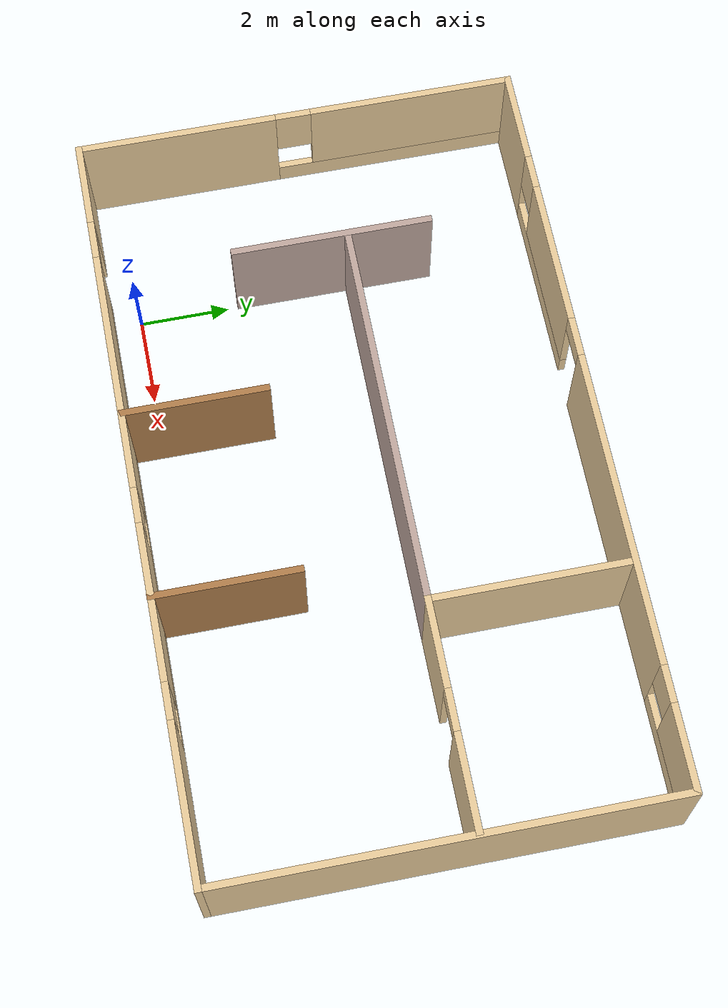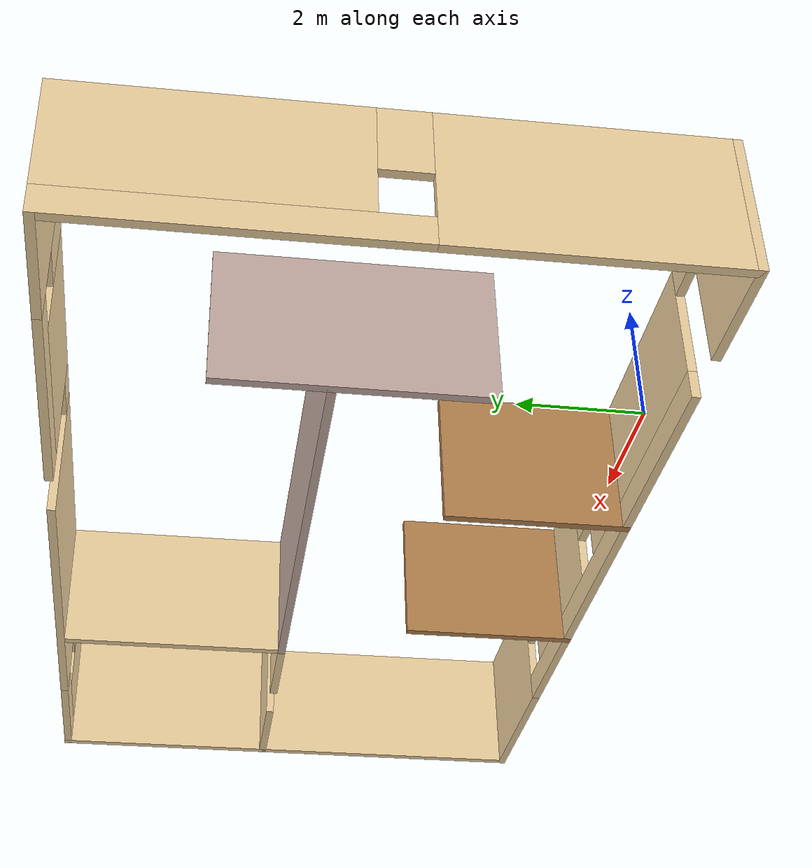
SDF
<?xml version='1.0'?>
<sdf version='1.7'>
  <model name='HomeOffice'>
    <pose>5.125 4.2424 0 0 -0 0</pose>
    <link name='Wall_0'>
      <pose>-8.425 0.002596 0 0 -0 1.5708</pose>
      <visual name='Wall_0_Visual_0'>
        <pose>-2.72763 0 1.25 0 -0 0</pose>
        <geometry>
          <box>
            <size>4.54474 0.15 2.5</size>
          </box>
        </geometry>
        <material>
          <script>
            <uri>file://media/materials/scripts/gazebo.material</uri>
            <name>Gazebo/Grey</name>
          </script>
          <ambient>0.921569 0.807843 0.615686 1</ambient>
        </material>
        <meta>
          <layer>0</layer>
        </meta>
      </visual>
      <collision name='Wall_0_Collision_0'>
        <geometry>
          <box>
            <size>4.54474 0.15 2.5</size>
          </box>
        </geometry>
        <pose>-2.72763 0 1.25 0 -0 0</pose>
      </collision>
      <visual name='Wall_0_Visual_1'>
        <pose>2.27237 0 0.25 0 -0 0</pose>
        <geometry>
          <box>
            <size>5.45526 0.15 0.5</size>
          </box>
        </geometry>
        <material>
          <script>
            <uri>file://media/materials/scripts/gazebo.material</uri>
            <name>Gazebo/Grey</name>
          </script>
          <ambient>0.921569 0.807843 0.615686 1</ambient>
        </material>
        <meta>
          <layer>0</layer>
        </meta>
      </visual>
      <collision name='Wall_0_Collision_1'>
        <geometry>
          <box>
            <size>5.45526 0.15 0.5</size>
          </box>
        </geometry>
        <pose>2.27237 0 0.25 0 -0 0</pose>
      </collision>
      <visual name='Wall_0_Visual_2'>
        <pose>2.67237 0 1.5 0 -0 0</pose>
        <geometry>
          <box>
            <size>4.65526 0.15 2</size>
          </box>
        </geometry>
        <material>
          <script>
            <uri>file://media/materials/scripts/gazebo.material</uri>
            <name>Gazebo/Grey</name>
          </script>
          <ambient>0.921569 0.807843 0.615686 1</ambient>
        </material>
        <meta>
          <layer>0</layer>
        </meta>
      </visual>
      <collision name='Wall_0_Collision_2'>
        <geometry>
          <box>
            <size>4.65526 0.15 2</size>
          </box>
        </geometry>
        <pose>2.67237 0 1.5 0 -0 0</pose>
      </collision>
      <visual name='Wall_0_Visual_3'>
        <pose>-0.055255 0 1.9 0 -0 0</pose>
        <geometry>
          <box>
            <size>0.8 0.15 1.2</size>
          </box>
        </geometry>
        <material>
          <script>
            <uri>file://media/materials/scripts/gazebo.material</uri>
            <name>Gazebo/Grey</name>
          </script>
          <ambient>0.921569 0.807843 0.615686 1</ambient>
        </material>
        <meta>
          <layer>0</layer>
        </meta>
      </visual>
      <collision name='Wall_0_Collision_3'>
        <geometry>
          <box>
            <size>0.8 0.15 1.2</size>
          </box>
        </geometry>
        <pose>-0.055255 0 1.9 0 -0 0</pose>
      </collision>
    </link>
    <link name='Wall_1'>
      <pose>-0 4.9276 0 0 -0 0</pose>
      <visual name='Wall_1_Visual_0'>
        <pose>-7.41024 0 1.25 0 -0 0</pose>
        <geometry>
          <box>
            <size>2.17952 0.15 2.5</size>
          </box>
        </geometry>
        <material>
          <script>
            <uri>file://media/materials/scripts/gazebo.material</uri>
            <name>Gazebo/Grey</name>
          </script>
          <ambient>0.921569 0.807843 0.615686 1</ambient>
        </material>
        <meta>
          <layer>0</layer>
        </meta>
      </visual>
      <collision name='Wall_1_Collision_0'>
        <geometry>
          <box>
            <size>2.17952 0.15 2.5</size>
          </box>
        </geometry>
        <pose>-7.41024 0 1.25 0 -0 0</pose>
      </collision>
      <visual name='Wall_1_Visual_1'>
        <pose>2.26645 0 1.25 0 -0 0</pose>
        <geometry>
          <box>
            <size>7.05766 0.15 2.5</size>
          </box>
        </geometry>
        <material>
          <script>
            <uri>file://media/materials/scripts/gazebo.material</uri>
            <name>Gazebo/Grey</name>
          </script>
          <ambient>0.921569 0.807843 0.615686 1</ambient>
        </material>
        <meta>
          <layer>0</layer>
        </meta>
      </visual>
      <collision name='Wall_1_Collision_1'>
        <geometry>
          <box>
            <size>7.05766 0.15 2.5</size>
          </box>
        </geometry>
        <pose>2.26645 0 1.25 0 -0 0</pose>
      </collision>
      <visual name='Wall_1_Visual_2'>
        <pose>-4.24143 0 0.25 0 -0 0</pose>
        <geometry>
          <box>
            <size>4.1581 0.15 0.5</size>
          </box>
        </geometry>
        <material>
          <script>
            <uri>file://media/materials/scripts/gazebo.material</uri>
            <name>Gazebo/Grey</name>
          </script>
          <ambient>0.921569 0.807843 0.615686 1</ambient>
        </material>
        <meta>
          <layer>0</layer>
        </meta>
      </visual>
      <collision name='Wall_1_Collision_2'>
        <geometry>
          <box>
            <size>4.1581 0.15 0.5</size>
          </box>
        </geometry>
        <pose>-4.24143 0 0.25 0 -0 0</pose>
      </collision>
      <visual name='Wall_1_Visual_3'>
        <pose>7.14764 0 0.25 0 -0 0</pose>
        <geometry>
          <box>
            <size>2.70472 0.15 0.5</size>
          </box>
        </geometry>
        <material>
          <script>
            <uri>file://media/materials/scripts/gazebo.material</uri>
            <name>Gazebo/Grey</name>
          </script>
          <ambient>0.921569 0.807843 0.615686 1</ambient>
        </material>
        <meta>
          <layer>0</layer>
        </meta>
      </visual>
      <collision name='Wall_1_Collision_3'>
        <geometry>
          <box>
            <size>2.70472 0.15 0.5</size>
          </box>
        </geometry>
        <pose>7.14764 0 0.25 0 -0 0</pose>
      </collision>
      <visual name='Wall_1_Visual_4'>
        <pose>-3.84143 0 1.5 0 -0 0</pose>
        <geometry>
          <box>
            <size>3.3581 0.15 2</size>
          </box>
        </geometry>
        <material>
          <script>
            <uri>file://media/materials/scripts/gazebo.material</uri>
            <name>Gazebo/Grey</name>
          </script>
          <ambient>0.921569 0.807843 0.615686 1</ambient>
        </material>
        <meta>
          <layer>0</layer>
        </meta>
      </visual>
      <collision name='Wall_1_Collision_4'>
        <geometry>
          <box>
            <size>3.3581 0.15 2</size>
          </box>
        </geometry>
        <pose>-3.84143 0 1.5 0 -0 0</pose>
      </collision>
      <visual name='Wall_1_Visual_5'>
        <pose>-3.84143 0 1.5 0 -0 0</pose>
        <geometry>
          <box>
            <size>3.3581 0.15 2</size>
          </box>
        </geometry>
        <material>
          <script>
            <uri>file://media/materials/scripts/gazebo.material</uri>
            <name>Gazebo/Grey</name>
          </script>
          <ambient>0.921569 0.807843 0.615686 1</ambient>
        </material>
        <meta>
          <layer>0</layer>
        </meta>
      </visual>
      <collision name='Wall_1_Collision_5'>
        <geometry>
          <box>
            <size>3.3581 0.15 2</size>
          </box>
        </geometry>
        <pose>-3.84143 0 1.5 0 -0 0</pose>
      </collision>
      <visual name='Wall_1_Visual_6'>
        <pose>7.54764 0 1.5 0 -0 0</pose>
        <geometry>
          <box>
            <size>1.90472 0.15 2</size>
          </box>
        </geometry>
        <material>
          <script>
            <uri>file://media/materials/scripts/gazebo.material</uri>
            <name>Gazebo/Grey</name>
          </script>
          <ambient>0.921569 0.807843 0.615686 1</ambient>
        </material>
        <meta>
          <layer>0</layer>
        </meta>
      </visual>
      <collision name='Wall_1_Collision_6'>
        <geometry>
          <box>
            <size>1.90472 0.15 2</size>
          </box>
        </geometry>
        <pose>7.54764 0 1.5 0 -0 0</pose>
      </collision>
      <visual name='Wall_1_Visual_7'>
        <pose>-5.92048 0 1.9 0 -0 0</pose>
        <geometry>
          <box>
            <size>0.8 0.15 1.2</size>
          </box>
        </geometry>
        <material>
          <script>
            <uri>file://media/materials/scripts/gazebo.material</uri>
            <name>Gazebo/Grey</name>
          </script>
          <ambient>0.921569 0.807843 0.615686 1</ambient>
        </material>
        <meta>
          <layer>0</layer>
        </meta>
      </visual>
      <collision name='Wall_1_Collision_7'>
        <geometry>
          <box>
            <size>0.8 0.15 1.2</size>
          </box>
        </geometry>
        <pose>-5.92048 0 1.9 0 -0 0</pose>
      </collision>
      <visual name='Wall_1_Visual_8'>
        <pose>6.19528 0 1.9 0 -0 0</pose>
        <geometry>
          <box>
            <size>0.8 0.15 1.2</size>
          </box>
        </geometry>
        <material>
          <script>
            <uri>file://media/materials/scripts/gazebo.material</uri>
            <name>Gazebo/Grey</name>
          </script>
          <ambient>0.921569 0.807843 0.615686 1</ambient>
        </material>
        <meta>
          <layer>0</layer>
        </meta>
      </visual>
      <collision name='Wall_1_Collision_8'>
        <geometry>
          <box>
            <size>0.8 0.15 1.2</size>
          </box>
        </geometry>
        <pose>6.19528 0 1.9 0 -0 0</pose>
      </collision>
      <visual name='Wall_1_Visual_9'>
        <pose>-1.71238 0 2.25 0 -0 0</pose>
        <geometry>
          <box>
            <size>0.9 0.15 0.5</size>
          </box>
        </geometry>
        <material>
          <script>
            <uri>file://media/materials/scripts/gazebo.material</uri>
            <name>Gazebo/Grey</name>
          </script>
          <ambient>0.921569 0.807843 0.615686 1</ambient>
        </material>
        <meta>
          <layer>0</layer>
        </meta>
      </visual>
      <collision name='Wall_1_Collision_9'>
        <geometry>
          <box>
            <size>0.9 0.15 0.5</size>
          </box>
        </geometry>
        <pose>-1.71238 0 2.25 0 -0 0</pose>
      </collision>
      <visual name='Wall_1_Visual_10'>
        <pose>-1.71238 0 2.25 0 -0 0</pose>
        <geometry>
          <box>
            <size>0.9 0.15 0.5</size>
          </box>
        </geometry>
        <material>
          <script>
            <uri>file://media/materials/scripts/gazebo.material</uri>
            <name>Gazebo/Grey</name>
          </script>
          <ambient>0.921569 0.807843 0.615686 1</ambient>
        </material>
        <meta>
          <layer>0</layer>
        </meta>
      </visual>
      <collision name='Wall_1_Collision_10'>
        <geometry>
          <box>
            <size>0.9 0.15 0.5</size>
          </box>
        </geometry>
        <pose>-1.71238 0 2.25 0 -0 0</pose>
      </collision>
    </link>
    <link name='Wall_11'>
      <pose>5.95103 0.586614 0 0 -0 0</pose>
      <visual name='Wall_11_Visual_0'>
        <pose>-1.50527 0 1.25 0 -0 0</pose>
        <geometry>
          <box>
            <size>1.98945 0.15 2.5</size>
          </box>
        </geometry>
        <material>
          <script>
            <uri>file://media/materials/scripts/gazebo.material</uri>
            <name>Gazebo/Grey</name>
          </script>
          <ambient>0.921569 0.807843 0.615686 1</ambient>
        </material>
        <meta>
          <layer>0</layer>
        </meta>
      </visual>
      <collision name='Wall_11_Collision_0'>
        <geometry>
          <box>
            <size>1.98945 0.15 2.5</size>
          </box>
        </geometry>
        <pose>-1.50527 0 1.25 0 -0 0</pose>
      </collision>
      <visual name='Wall_11_Visual_1'>
        <pose>1.44473 0 1.25 0 -0 0</pose>
        <geometry>
          <box>
            <size>2.11055 0.15 2.5</size>
          </box>
        </geometry>
        <material>
          <script>
            <uri>file://media/materials/scripts/gazebo.material</uri>
            <name>Gazebo/Grey</name>
          </script>
          <ambient>0.921569 0.807843 0.615686 1</ambient>
        </material>
        <meta>
          <layer>0</layer>
        </meta>
      </visual>
      <collision name='Wall_11_Collision_1'>
        <geometry>
          <box>
            <size>2.11055 0.15 2.5</size>
          </box>
        </geometry>
        <pose>1.44473 0 1.25 0 -0 0</pose>
      </collision>
      <visual name='Wall_11_Visual_2'>
        <pose>-0.060545 0 2.25 0 -0 0</pose>
        <geometry>
          <box>
            <size>0.9 0.15 0.5</size>
          </box>
        </geometry>
        <material>
          <script>
            <uri>file://media/materials/scripts/gazebo.material</uri>
            <name>Gazebo/Grey</name>
          </script>
          <ambient>0.921569 0.807843 0.615686 1</ambient>
        </material>
        <meta>
          <layer>0</layer>
        </meta>
      </visual>
      <collision name='Wall_11_Collision_2'>
        <geometry>
          <box>
            <size>0.9 0.15 0.5</size>
          </box>
        </geometry>
        <pose>-0.060545 0 2.25 0 -0 0</pose>
      </collision>
    </link>
    <link name='Wall_15'>
      <collision name='Wall_15_Collision'>
        <geometry>
          <box>
            <size>3.25 0.15 2.5</size>
          </box>
        </geometry>
        <pose>0 0 1.25 0 -0 0</pose>
      </collision>
      <visual name='Wall_15_Visual'>
        <pose>0 0 1.25 0 -0 0</pose>
        <geometry>
          <box>
            <size>3.25 0.15 2.5</size>
          </box>
        </geometry>
        <material>
          <script>
            <uri>file://media/materials/scripts/gazebo.material</uri>
            <name>Gazebo/Wood</name>
          </script>
          <ambient>1 1 1 1</ambient>
        </material>
        <meta>
          <layer>0</layer>
        </meta>
      </visual>
      <pose>2.3971 -3.3776 0 0 -0 1.5708</pose>
    </link>
    <link name='Wall_17'>
      <collision name='Wall_17_Collision'>
        <geometry>
          <box>
            <size>3.25 0.15 2.5</size>
          </box>
        </geometry>
        <pose>0 0 1.25 0 -0 0</pose>
      </collision>
      <visual name='Wall_17_Visual'>
        <pose>0 0 1.25 0 -0 0</pose>
        <geometry>
          <box>
            <size>3.25 0.15 2.5</size>
          </box>
        </geometry>
        <material>
          <script>
            <uri>file://media/materials/scripts/gazebo.material</uri>
            <name>Gazebo/Wood</name>
          </script>
          <ambient>1 1 1 1</ambient>
        </material>
        <meta>
          <layer>0</layer>
        </meta>
      </visual>
      <pose>-1.77936 -3.35562 0 0 -0 1.5708</pose>
    </link>
    <link name='Wall_2'>
      <collision name='Wall_2_Collision'>
        <geometry>
          <box>
            <size>10 0.15 2.5</size>
          </box>
        </geometry>
        <pose>0 0 1.25 0 -0 0</pose>
      </collision>
      <visual name='Wall_2_Visual'>
        <pose>0 0 1.25 0 -0 0</pose>
        <geometry>
          <box>
            <size>10 0.15 2.5</size>
          </box>
        </geometry>
        <material>
          <script>
            <uri>file://media/materials/scripts/gazebo.material</uri>
            <name>Gazebo/Grey</name>
          </script>
          <ambient>0.921569 0.807843 0.615686 1</ambient>
        </material>
        <meta>
          <layer>0</layer>
        </meta>
      </visual>
      <pose>8.425 0.002596 0 0 -0 -1.5708</pose>
    </link>
    <link name='Wall_3'>
      <pose>-0 -4.9224 0 0 -0 3.14159</pose>
      <visual name='Wall_3_Visual_0'>
        <pose>-6.76663 0 1.25 0 -0 0</pose>
        <geometry>
          <box>
            <size>3.46674 0.15 2.5</size>
          </box>
        </geometry>
        <material>
          <script>
            <uri>file://media/materials/scripts/gazebo.material</uri>
            <name>Gazebo/Grey</name>
          </script>
          <ambient>0.921569 0.807843 0.615686 1</ambient>
        </material>
        <meta>
          <layer>0</layer>
        </meta>
      </visual>
      <collision name='Wall_3_Collision_0'>
        <geometry>
          <box>
            <size>3.46674 0.15 2.5</size>
          </box>
        </geometry>
        <pose>-6.76663 0 1.25 0 -0 0</pose>
      </collision>
      <visual name='Wall_3_Visual_1'>
        <pose>7.5069 0 1.25 0 -0 0</pose>
        <geometry>
          <box>
            <size>1.98621 0.15 2.5</size>
          </box>
        </geometry>
        <material>
          <script>
            <uri>file://media/materials/scripts/gazebo.material</uri>
            <name>Gazebo/Grey</name>
          </script>
          <ambient>0.921569 0.807843 0.615686 1</ambient>
        </material>
        <meta>
          <layer>0</layer>
        </meta>
      </visual>
      <collision name='Wall_3_Collision_1'>
        <geometry>
          <box>
            <size>1.98621 0.15 2.5</size>
          </box>
        </geometry>
        <pose>7.5069 0 1.25 0 -0 0</pose>
      </collision>
      <visual name='Wall_3_Visual_2'>
        <pose>0.290267 0 0.25 0 -0 0</pose>
        <geometry>
          <box>
            <size>10.6471 0.15 0.5</size>
          </box>
        </geometry>
        <material>
          <script>
            <uri>file://media/materials/scripts/gazebo.material</uri>
            <name>Gazebo/Grey</name>
          </script>
          <ambient>0.921569 0.807843 0.615686 1</ambient>
        </material>
        <meta>
          <layer>0</layer>
        </meta>
      </visual>
      <collision name='Wall_3_Collision_2'>
        <geometry>
          <box>
            <size>10.6471 0.15 0.5</size>
          </box>
        </geometry>
        <pose>0.290267 0 0.25 0 -0 0</pose>
      </collision>
      <visual name='Wall_3_Visual_3'>
        <pose>-2.49467 0 1.5 0 -0 0</pose>
        <geometry>
          <box>
            <size>3.47717 0.15 2</size>
          </box>
        </geometry>
        <material>
          <script>
            <uri>file://media/materials/scripts/gazebo.material</uri>
            <name>Gazebo/Grey</name>
          </script>
          <ambient>0.921569 0.807843 0.615686 1</ambient>
        </material>
        <meta>
          <layer>0</layer>
        </meta>
      </visual>
      <collision name='Wall_3_Collision_3'>
        <geometry>
          <box>
            <size>3.47717 0.15 2</size>
          </box>
        </geometry>
        <pose>-2.49467 0 1.5 0 -0 0</pose>
      </collision>
      <visual name='Wall_3_Visual_4'>
        <pose>2.82885 0 1.5 0 -0 0</pose>
        <geometry>
          <box>
            <size>5.56988 0.15 2</size>
          </box>
        </geometry>
        <material>
          <script>
            <uri>file://media/materials/scripts/gazebo.material</uri>
            <name>Gazebo/Grey</name>
          </script>
          <ambient>0.921569 0.807843 0.615686 1</ambient>
        </material>
        <meta>
          <layer>0</layer>
        </meta>
      </visual>
      <collision name='Wall_3_Collision_4'>
        <geometry>
          <box>
            <size>5.56988 0.15 2</size>
          </box>
        </geometry>
        <pose>2.82885 0 1.5 0 -0 0</pose>
      </collision>
      <visual name='Wall_3_Visual_5'>
        <pose>-4.63326 0 1.9 0 -0 0</pose>
        <geometry>
          <box>
            <size>0.8 0.15 1.2</size>
          </box>
        </geometry>
        <material>
          <script>
            <uri>file://media/materials/scripts/gazebo.material</uri>
            <name>Gazebo/Grey</name>
          </script>
          <ambient>0.921569 0.807843 0.615686 1</ambient>
        </material>
        <meta>
          <layer>0</layer>
        </meta>
      </visual>
      <collision name='Wall_3_Collision_5'>
        <geometry>
          <box>
            <size>0.8 0.15 1.2</size>
          </box>
        </geometry>
        <pose>-4.63326 0 1.9 0 -0 0</pose>
      </collision>
      <visual name='Wall_3_Visual_6'>
        <pose>-0.356089 0 1.9 0 -0 0</pose>
        <geometry>
          <box>
            <size>0.8 0.15 1.2</size>
          </box>
        </geometry>
        <material>
          <script>
            <uri>file://media/materials/scripts/gazebo.material</uri>
            <name>Gazebo/Grey</name>
          </script>
          <ambient>0.921569 0.807843 0.615686 1</ambient>
        </material>
        <meta>
          <layer>0</layer>
        </meta>
      </visual>
      <collision name='Wall_3_Collision_6'>
        <geometry>
          <box>
            <size>0.8 0.15 1.2</size>
          </box>
        </geometry>
        <pose>-0.356089 0 1.9 0 -0 0</pose>
      </collision>
      <visual name='Wall_3_Visual_7'>
        <pose>6.06379 0 2.25 0 -0 0</pose>
        <geometry>
          <box>
            <size>0.9 0.15 0.5</size>
          </box>
        </geometry>
        <material>
          <script>
            <uri>file://media/materials/scripts/gazebo.material</uri>
            <name>Gazebo/Grey</name>
          </script>
          <ambient>0.921569 0.807843 0.615686 1</ambient>
        </material>
        <meta>
          <layer>0</layer>
        </meta>
      </visual>
      <collision name='Wall_3_Collision_7'>
        <geometry>
          <box>
            <size>0.9 0.15 0.5</size>
          </box>
        </geometry>
        <pose>6.06379 0 2.25 0 -0 0</pose>
      </collision>
    </link>
    <link name='Wall_5'>
      <collision name='Wall_5_Collision'>
        <geometry>
          <box>
            <size>4.5 0.15 2.5</size>
          </box>
        </geometry>
        <pose>0 0 1.25 0 -0 0</pose>
      </collision>
      <visual name='Wall_5_Visual'>
        <pose>0 0 1.25 0 -0 0</pose>
        <geometry>
          <box>
            <size>4.5 0.15 2.5</size>
          </box>
        </geometry>
        <material>
          <script>
            <uri>file://media/materials/scripts/gazebo.material</uri>
            <name>Gazebo/Grey</name>
          </script>
          <ambient>0.760784 0.662745 0.627451 1</ambient>
        </material>
        <meta>
          <layer>0</layer>
        </meta>
      </visual>
      <pose>-5.17438 0.236386 0 0 -0 -1.5708</pose>
    </link>
    <link name='Wall_8'>
      <collision name='Wall_8_Collision'>
        <geometry>
          <box>
            <size>8.75 0.15 2.5</size>
          </box>
        </geometry>
        <pose>0 0 1.25 0 -0 0</pose>
      </collision>
      <visual name='Wall_8_Visual'>
        <pose>0 0 1.25 0 -0 0</pose>
        <geometry>
          <box>
            <size>8.75 0.15 2.5</size>
          </box>
        </geometry>
        <material>
          <script>
            <uri>file://media/materials/scripts/gazebo.material</uri>
            <name>Gazebo/Grey</name>
          </script>
          <ambient>0.760784 0.662745 0.627451 1</ambient>
        </material>
        <meta>
          <layer>0</layer>
        </meta>
      </visual>
      <pose>-0.773966 0.586614 0 0 -0 0</pose>
    </link>
    <link name='Wall_9'>
      <collision name='Wall_9_Collision'>
        <geometry>
          <box>
            <size>4.48714 0.15 2.5</size>
          </box>
        </geometry>
        <pose>0 0 1.25 0 -0 0</pose>
      </collision>
      <visual name='Wall_9_Visual'>
        <pose>0 0 1.25 0 -0 0</pose>
        <geometry>
          <box>
            <size>4.48714 0.15 2.5</size>
          </box>
        </geometry>
        <material>
          <script>
            <uri>file://media/materials/scripts/gazebo.material</uri>
            <name>Gazebo/Grey</name>
          </script>
          <ambient>0.921569 0.807843 0.615686 1</ambient>
        </material>
        <meta>
          <layer>0</layer>
        </meta>
      </visual>
      <pose>3.52603 2.75519 0 0 -0 1.5708</pose>
    </link>
    <static>1</static>
  </model>
</sdf>
